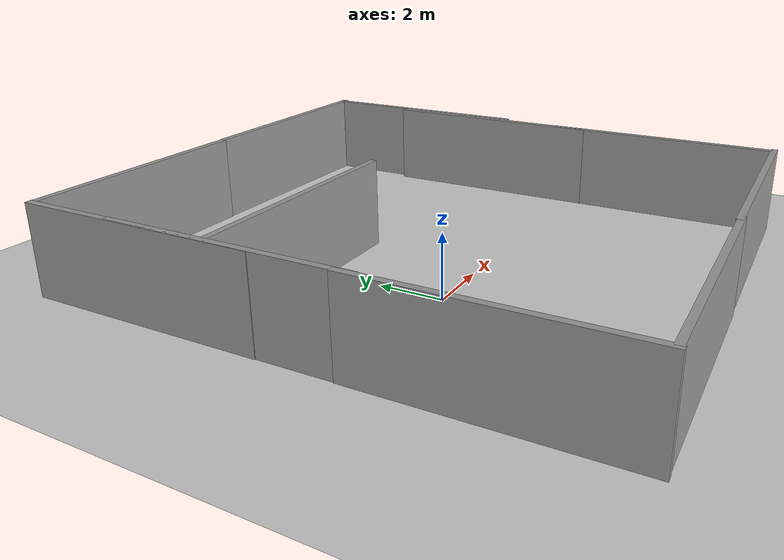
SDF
<sdf version="1.6">
 <world name="default">
  <light name="sun" type="directional">
   <pose>0 0 10 0 -0 0</pose>
   <diffuse>0.8 0.8 0.8 1</diffuse>
   <specular>0.1 0.1 0.1 1</specular>
   <attenuation>
    <range>1000</range>
    <constant>0.9</constant>
    <linear>0.01</linear>
    <quadratic>0.001</quadratic>
   </attenuation>
   <direction>-0.5 0.5 -1</direction>
  </light>
  <model name="ground_plane">
   <static>1</static>
   <link name="link">
    <collision name="collision">
     <geometry><plane><normal>0 0 1</normal><size>100 100</size></plane></geometry>
     <surface><friction><ode><mu>100</mu><mu2>50</mu2></ode></friction></surface>
    </collision>
    <visual name="visual">
     <cast_shadows>0</cast_shadows>
     <geometry><plane><normal>0 0 1</normal><size>100 100</size></plane></geometry>
     <material>
      <script><uri>file://media/materials/scripts/gazebo.material</uri><name>Gazebo/Grey</name></script>
     </material>
    </visual>
   </link>
  </model>
  <gravity>0 0 -9.8</gravity>
  <magnetic_field>6e-06 2.3e-05 -4.2e-05</magnetic_field>
  <atmosphere type="adiabatic"/>
  <physics name="default_physics" default="0" type="ode">
   <max_step_size>0.001</max_step_size>
   <real_time_factor>1</real_time_factor>
   <real_time_update_rate>1000</real_time_update_rate>
  </physics>
  <scene><ambient>0.4 0.4 0.4 1</ambient><background>0.7 0.7 0.7 1</background><shadows>1</shadows></scene>
  <spherical_coordinates>
   <surface_model>EARTH_WGS84</surface_model>
   <latitude_deg>0</latitude_deg>
   <longitude_deg>0</longitude_deg>
   <elevation>0</elevation>
   <heading_deg>0</heading_deg>
  </spherical_coordinates>
  <model name="grey_wall">
   <static>1</static>
   <link name="link">
    <pose>0 0 1.4 0 -0 0</pose>
    <collision name="collision"><geometry><box><size>7.5 0.2 2.8</size></box></geometry></collision>
    <visual name="visual">
     <cast_shadows>0</cast_shadows>
     <geometry><box><size>7.5 0.2 2.8</size></box></geometry>
     <material>
      <script>
       <uri>model://grey_wall/materials/scripts</uri>
       <uri>model://grey_wall/materials/textures</uri>
       <name>vrc/grey_wall</name>
      </script>
     </material>
    </visual>
   </link>
   <pose>6.24608 -7.1357 0 0 -0 0</pose>
  </model>
  <model name="grey_wall_clone">
   <static>1</static>
   <link name="link">
    <pose>0 0 1.4 0 -0 0</pose>
    <collision name="collision"><geometry><box><size>7.5 0.2 2.8</size></box></geometry></collision>
    <visual name="visual">
     <cast_shadows>0</cast_shadows>
     <geometry><box><size>7.5 0.2 2.8</size></box></geometry>
     <material>
      <script>
       <uri>model://grey_wall/materials/scripts</uri>
       <uri>model://grey_wall/materials/textures</uri>
       <name>vrc/grey_wall</name>
      </script>
     </material>
    </visual>
   </link>
   <pose>-0.950978 -7.16747 0 0 -0 0</pose>
  </model>
  <model name="grey_wall_clone_0">
   <static>1</static>
   <link name="link">
    <pose>0 0 1.4 0 -0 0</pose>
    <collision name="collision"><geometry><box><size>7.5 0.2 2.8</size></box></geometry></collision>
    <visual name="visual">
     <cast_shadows>0</cast_shadows>
     <geometry><box><size>7.5 0.2 2.8</size></box></geometry>
     <material>
      <script>
       <uri>model://grey_wall/materials/scripts</uri>
       <uri>model://grey_wall/materials/textures</uri>
       <name>vrc/grey_wall</name>
      </script>
     </material>
    </visual>
   </link>
   <pose>6.25 9.88116 0 0 -0 0</pose>
  </model>
  <model name="grey_wall_clone_1">
   <static>1</static>
   <link name="link">
    <pose>0 0 1.4 0 -0 0</pose>
    <collision name="collision"><geometry><box><size>7.5 0.2 2.8</size></box></geometry></collision>
    <visual name="visual">
     <cast_shadows>0</cast_shadows>
     <geometry><box><size>7.5 0.2 2.8</size></box></geometry>
     <material>
      <script>
       <uri>model://grey_wall/materials/scripts</uri>
       <uri>model://grey_wall/materials/textures</uri>
       <name>vrc/grey_wall</name>
      </script>
     </material>
    </visual>
   </link>
   <pose>-1.24787 9.84856 0 0 -0 0</pose>
  </model>
  <model name="grey_wall_clone_2">
   <static>1</static>
   <link name="link">
    <pose>0 0 1.4 0 -0 0</pose>
    <collision name="collision"><geometry><box><size>7.5 0.2 2.8</size></box></geometry></collision>
    <visual name="visual">
     <cast_shadows>0</cast_shadows>
     <geometry><box><size>7.5 0.2 2.8</size></box></geometry>
     <material>
      <script>
       <uri>model://grey_wall/materials/scripts</uri>
       <uri>model://grey_wall/materials/textures</uri>
       <name>vrc/grey_wall</name>
      </script>
     </material>
    </visual>
   </link>
   <pose>-4.76168 -3.53796 0 0 -0 1.58343</pose>
  </model>
  <model name="grey_wall_clone_2_clone">
   <static>1</static>
   <link name="link">
    <pose>0 0 1.4 0 -0 0</pose>
    <collision name="collision"><geometry><box><size>7.5 0.2 2.8</size></box></geometry></collision>
    <visual name="visual">
     <cast_shadows>0</cast_shadows>
     <geometry><box><size>7.5 0.2 2.8</size></box></geometry>
     <material>
      <script>
       <uri>model://grey_wall/materials/scripts</uri>
       <uri>model://grey_wall/materials/textures</uri>
       <name>vrc/grey_wall</name>
      </script>
     </material>
    </visual>
   </link>
   <pose>-4.82524 3.32851 0 0 -0 1.58343</pose>
  </model>
  <model name="grey_wall_clone_2_clone_0">
   <static>1</static>
   <link name="link">
    <pose>0 0 1.4 0 -0 0</pose>
    <collision name="collision"><geometry><box><size>7.5 0.2 2.8</size></box></geometry></collision>
    <visual name="visual">
     <cast_shadows>0</cast_shadows>
     <geometry><box><size>7.5 0.2 2.8</size></box></geometry>
     <material>
      <script>
       <uri>model://grey_wall/materials/scripts</uri>
       <uri>model://grey_wall/materials/textures</uri>
       <name>vrc/grey_wall</name>
      </script>
     </material>
    </visual>
   </link>
   <pose>-4.88307 6.20993 0 0 -0 1.58343</pose>
  </model>
  <model name="grey_wall_clone_2_clone_1">
   <static>1</static>
   <link name="link">
    <pose>0 0 1.4 0 -0 0</pose>
    <collision name="collision"><geometry><box><size>7.5 0.2 2.8</size></box></geometry></collision>
    <visual name="visual">
     <cast_shadows>0</cast_shadows>
     <geometry><box><size>7.5 0.2 2.8</size></box></geometry>
     <material>
      <script>
       <uri>model://grey_wall/materials/scripts</uri>
       <uri>model://grey_wall/materials/textures</uri>
       <name>vrc/grey_wall</name>
      </script>
     </material>
    </visual>
   </link>
   <pose>9.772 -3.33627 0 0 -0 1.58343</pose>
  </model>
  <model name="grey_wall_clone_2_clone_2">
   <static>1</static>
   <link name="link">
    <pose>0 0 1.4 0 -0 0</pose>
    <collision name="collision"><geometry><box><size>7.5 0.2 2.8</size></box></geometry></collision>
    <visual name="visual">
     <cast_shadows>0</cast_shadows>
     <geometry><box><size>7.5 0.2 2.8</size></box></geometry>
     <material>
      <script>
       <uri>model://grey_wall/materials/scripts</uri>
       <uri>model://grey_wall/materials/textures</uri>
       <name>vrc/grey_wall</name>
      </script>
     </material>
    </visual>
   </link>
   <pose>9.68052 3.04305 0 0 -0 1.58343</pose>
  </model>
  <model name="grey_wall_clone_2_clone_3">
   <static>1</static>
   <link name="link">
    <pose>0 0 1.4 0 -0 0</pose>
    <collision name="collision"><geometry><box><size>7.5 0.2 2.8</size></box></geometry></collision>
    <visual name="visual">
     <cast_shadows>0</cast_shadows>
     <geometry><box><size>7.5 0.2 2.8</size></box></geometry>
     <material>
      <script>
       <uri>model://grey_wall/materials/scripts</uri>
       <uri>model://grey_wall/materials/textures</uri>
       <name>vrc/grey_wall</name>
      </script>
     </material>
    </visual>
   </link>
   <pose>9.86908 6.13676 0 0 -0 1.58343</pose>
  </model>
  <model name="grey_wall_clone_clone">
   <static>1</static>
   <link name="link">
    <pose>0 0 1.4 0 -0 0</pose>
    <collision name="collision"><geometry><box><size>7.5 0.2 2.8</size></box></geometry></collision>
    <visual name="visual">
     <cast_shadows>0</cast_shadows>
     <geometry><box><size>7.5 0.2 2.8</size></box></geometry>
     <material>
      <script>
       <uri>model://grey_wall/materials/scripts</uri>
       <uri>model://grey_wall/materials/textures</uri>
       <name>vrc/grey_wall</name>
      </script>
     </material>
    </visual>
   </link>
   <pose>-0.990746 3.89806 0 0 -0 0</pose>
  </model>
 </world>
</sdf>
